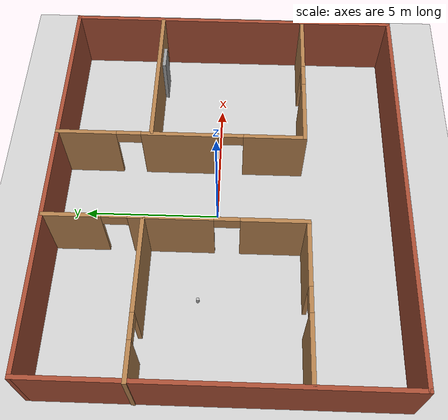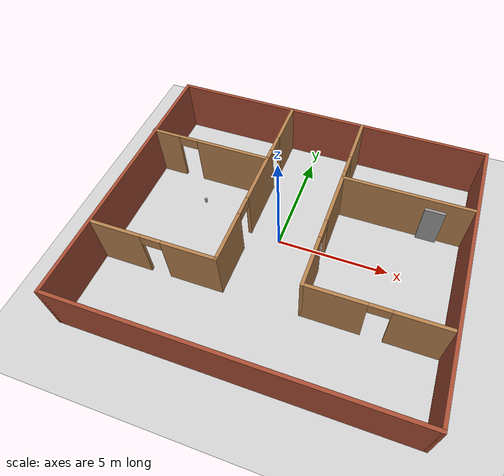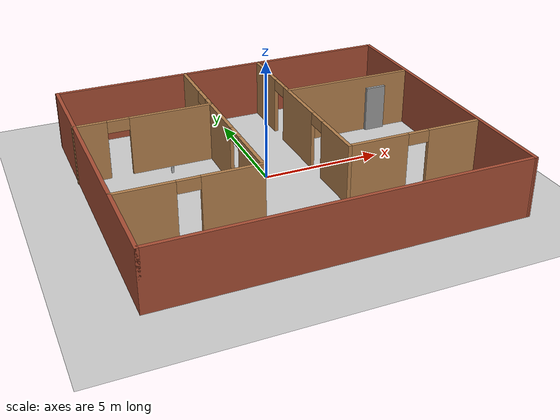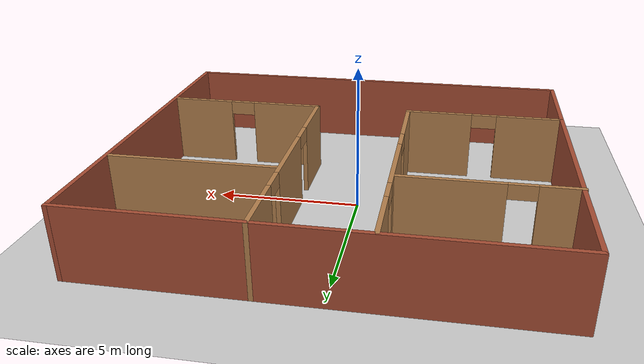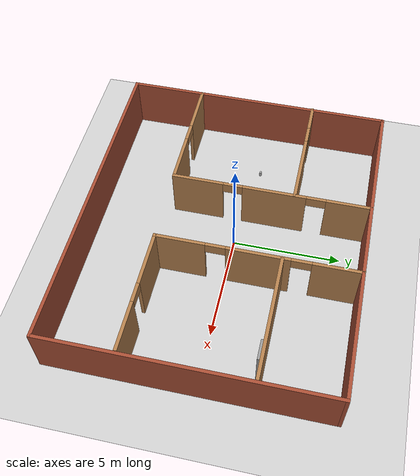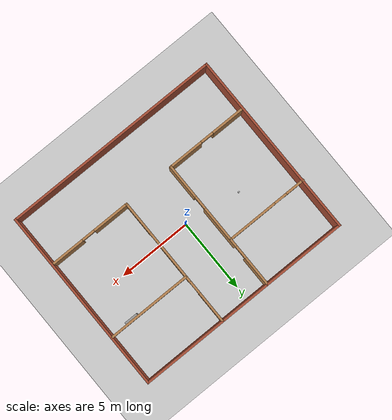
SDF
<sdf version="1.7">
 <world name="default">
  <model name="ground_plane">
   <static>1</static>
   <link name="link">
    <collision name="collision">
     <geometry><plane><normal>0 0 1</normal><size>100 100</size></plane></geometry>
     <surface><friction><ode><mu>100</mu><mu2>50</mu2></ode></friction></surface>
    </collision>
    <visual name="visual">
     <cast_shadows>0</cast_shadows>
     <geometry><plane><normal>0 0 1</normal><size>100 100</size></plane></geometry>
     <material>
      <script><uri>file://media/materials/scripts/gazebo.material</uri><name>Gazebo/Grey</name></script>
     </material>
    </visual>
   </link>
  </model>
  <gravity>0 0 -9.8</gravity>
  <magnetic_field>6e-06 2.3e-05 -4.2e-05</magnetic_field>
  <atmosphere type="adiabatic"/>
  <physics type="ode">
   <max_step_size>0.001</max_step_size>
   <real_time_factor>1</real_time_factor>
   <real_time_update_rate>1000</real_time_update_rate>
  </physics>
  <scene><ambient>0.4 0.4 0.4 1</ambient><background>0.7 0.7 0.7 1</background><shadows>1</shadows></scene>
  <audio><device>default</device></audio>
  <spherical_coordinates>
   <surface_model>EARTH_WGS84</surface_model>
   <latitude_deg>0</latitude_deg>
   <longitude_deg>0</longitude_deg>
   <elevation>0</elevation>
   <heading_deg>0</heading_deg>
  </spherical_coordinates>
  <model name="my_floor">
   <pose>0.381389 -0.326345 0 0 -0 0</pose>
   <link name="Door_5">
    <collision name="Door_5_Collision">
     <geometry><box><size>0.9 0.17 2</size></box></geometry>
     <pose>0 0 1 0 -0 0</pose>
    </collision>
    <visual name="Door_5_Visual">
     <pose>0 0 1 0 -0 0</pose>
     <geometry><box><size>0.9 0.17 2</size></box></geometry>
     <material>
      <script><uri>file://media/materials/scripts/gazebo.material</uri><name>Gazebo/Grey</name></script>
     </material>
    </visual>
    <pose>5.83586 2.72094 0 0 -0 0</pose>
   </link>
   <link name="Wall_10">
    <pose>-4.6097 -2.84648 0 0 -0 0</pose>
    <visual name="Wall_10_Visual_0">
     <pose>-1.67064 0 1.25 0 -0 0</pose>
     <geometry><box><size>2.40871 0.15 2.5</size></box></geometry>
     <material>
      <script><uri>file://media/materials/scripts/gazebo.material</uri><name>Gazebo/Wood</name></script>
      <ambient>1 1 1 1</ambient>
     </material>
     <meta><layer>0</layer></meta>
    </visual>
    <collision name="Wall_10_Collision_0">
     <geometry><box><size>2.40871 0.15 2.5</size></box></geometry>
     <pose>-1.67064 0 1.25 0 -0 0</pose>
    </collision>
    <visual name="Wall_10_Visual_1">
     <pose>1.65436 0 1.25 0 -0 0</pose>
     <geometry><box><size>2.44129 0.15 2.5</size></box></geometry>
     <material>
      <script><uri>file://media/materials/scripts/gazebo.material</uri><name>Gazebo/Wood</name></script>
      <ambient>1 1 1 1</ambient>
     </material>
     <meta><layer>0</layer></meta>
    </visual>
    <collision name="Wall_10_Collision_1">
     <geometry><box><size>2.44129 0.15 2.5</size></box></geometry>
     <pose>1.65436 0 1.25 0 -0 0</pose>
    </collision>
    <visual name="Wall_10_Visual_2">
     <pose>-0.016289 0 2.25 0 -0 0</pose>
     <geometry><box><size>0.9 0.15 0.5</size></box></geometry>
     <material>
      <script><uri>file://media/materials/scripts/gazebo.material</uri><name>Gazebo/Wood</name></script>
      <ambient>1 1 1 1</ambient>
     </material>
     <meta><layer>0</layer></meta>
    </visual>
    <collision name="Wall_10_Collision_2">
     <geometry><box><size>0.9 0.15 0.5</size></box></geometry>
     <pose>-0.016289 0 2.25 0 -0 0</pose>
    </collision>
   </link>
   <link name="Wall_11">
    <pose>-1.8097 1.70352 0 0 -0 1.5708</pose>
    <visual name="Wall_11_Visual_0">
     <pose>-3.42064 0 1.25 0 -0 0</pose>
     <geometry><box><size>2.40871 0.15 2.5</size></box></geometry>
     <material>
      <script><uri>file://media/materials/scripts/gazebo.material</uri><name>Gazebo/Wood</name></script>
      <ambient>1 1 1 1</ambient>
     </material>
     <meta><layer>0</layer></meta>
    </visual>
    <collision name="Wall_11_Collision_0">
     <geometry><box><size>2.40871 0.15 2.5</size></box></geometry>
     <pose>-3.42064 0 1.25 0 -0 0</pose>
    </collision>
    <visual name="Wall_11_Visual_1">
     <pose>0.160895 0 1.25 0 -0 0</pose>
     <geometry><box><size>2.95437 0.15 2.5</size></box></geometry>
     <material>
      <script><uri>file://media/materials/scripts/gazebo.material</uri><name>Gazebo/Wood</name></script>
      <ambient>1 1 1 1</ambient>
     </material>
     <meta><layer>0</layer></meta>
    </visual>
    <collision name="Wall_11_Collision_1">
     <geometry><box><size>2.95437 0.15 2.5</size></box></geometry>
     <pose>0.160895 0 1.25 0 -0 0</pose>
    </collision>
    <visual name="Wall_11_Visual_2">
     <pose>3.58154 0 1.25 0 -0 0</pose>
     <geometry><box><size>2.08692 0.15 2.5</size></box></geometry>
     <material>
      <script><uri>file://media/materials/scripts/gazebo.material</uri><name>Gazebo/Wood</name></script>
      <ambient>1 1 1 1</ambient>
     </material>
     <meta><layer>0</layer></meta>
    </visual>
    <collision name="Wall_11_Collision_2">
     <geometry><box><size>2.08692 0.15 2.5</size></box></geometry>
     <pose>3.58154 0 1.25 0 -0 0</pose>
    </collision>
    <visual name="Wall_11_Visual_3">
     <pose>-1.76629 0 2.25 0 -0 0</pose>
     <geometry><box><size>0.9 0.15 0.5</size></box></geometry>
     <material>
      <script><uri>file://media/materials/scripts/gazebo.material</uri><name>Gazebo/Wood</name></script>
      <ambient>1 1 1 1</ambient>
     </material>
     <meta><layer>0</layer></meta>
    </visual>
    <collision name="Wall_11_Collision_3">
     <geometry><box><size>0.9 0.15 0.5</size></box></geometry>
     <pose>-1.76629 0 2.25 0 -0 0</pose>
    </collision>
    <visual name="Wall_11_Visual_4">
     <pose>2.08808 0 2.25 0 -0 0</pose>
     <geometry><box><size>0.9 0.15 0.5</size></box></geometry>
     <material>
      <script><uri>file://media/materials/scripts/gazebo.material</uri><name>Gazebo/Wood</name></script>
      <ambient>1 1 1 1</ambient>
     </material>
     <meta><layer>0</layer></meta>
    </visual>
    <collision name="Wall_11_Collision_4">
     <geometry><box><size>0.9 0.15 0.5</size></box></geometry>
     <pose>2.08808 0 2.25 0 -0 0</pose>
    </collision>
   </link>
   <link name="Wall_13">
    <pose>1.67559 1.75 0 0 -0 -1.5708</pose>
    <visual name="Wall_13_Visual_0">
     <pose>-3.49712 0 1.25 0 -0 0</pose>
     <geometry><box><size>2.25576 0.15 2.5</size></box></geometry>
     <material>
      <script><uri>file://media/materials/scripts/gazebo.material</uri><name>Gazebo/Wood</name></script>
      <ambient>1 1 1 1</ambient>
     </material>
     <meta><layer>0</layer></meta>
    </visual>
    <collision name="Wall_13_Collision_0">
     <geometry><box><size>2.25576 0.15 2.5</size></box></geometry>
     <pose>-3.49712 0 1.25 0 -0 0</pose>
    </collision>
    <visual name="Wall_13_Visual_1">
     <pose>-0.037941 0 1.25 0 -0 0</pose>
     <geometry><box><size>2.8626 0.15 2.5</size></box></geometry>
     <material>
      <script><uri>file://media/materials/scripts/gazebo.material</uri><name>Gazebo/Wood</name></script>
      <ambient>1 1 1 1</ambient>
     </material>
     <meta><layer>0</layer></meta>
    </visual>
    <collision name="Wall_13_Collision_1">
     <geometry><box><size>2.8626 0.15 2.5</size></box></geometry>
     <pose>-0.037941 0 1.25 0 -0 0</pose>
    </collision>
    <visual name="Wall_13_Visual_2">
     <pose>3.45918 0 1.25 0 -0 0</pose>
     <geometry><box><size>2.33164 0.15 2.5</size></box></geometry>
     <material>
      <script><uri>file://media/materials/scripts/gazebo.material</uri><name>Gazebo/Wood</name></script>
      <ambient>1 1 1 1</ambient>
     </material>
     <meta><layer>0</layer></meta>
    </visual>
    <collision name="Wall_13_Collision_2">
     <geometry><box><size>2.33164 0.15 2.5</size></box></geometry>
     <pose>3.45918 0 1.25 0 -0 0</pose>
    </collision>
    <visual name="Wall_13_Visual_3">
     <pose>-1.91924 0 2.25 0 -0 0</pose>
     <geometry><box><size>0.9 0.15 0.5</size></box></geometry>
     <material>
      <script><uri>file://media/materials/scripts/gazebo.material</uri><name>Gazebo/Wood</name></script>
      <ambient>1 1 1 1</ambient>
     </material>
     <meta><layer>0</layer></meta>
    </visual>
    <collision name="Wall_13_Collision_3">
     <geometry><box><size>0.9 0.15 0.5</size></box></geometry>
     <pose>-1.91924 0 2.25 0 -0 0</pose>
    </collision>
    <visual name="Wall_13_Visual_4">
     <pose>1.84336 0 2.25 0 -0 0</pose>
     <geometry><box><size>0.9 0.15 0.5</size></box></geometry>
     <material>
      <script><uri>file://media/materials/scripts/gazebo.material</uri><name>Gazebo/Wood</name></script>
      <ambient>1 1 1 1</ambient>
     </material>
     <meta><layer>0</layer></meta>
    </visual>
    <collision name="Wall_13_Collision_4">
     <geometry><box><size>0.9 0.15 0.5</size></box></geometry>
     <pose>1.84336 0 2.25 0 -0 0</pose>
    </collision>
   </link>
   <link name="Wall_14">
    <pose>4.47559 -2.8 0 0 -0 0</pose>
    <visual name="Wall_14_Visual_0">
     <pose>-1.57887 0 1.25 0 -0 0</pose>
     <geometry><box><size>2.59225 0.15 2.5</size></box></geometry>
     <material>
      <script><uri>file://media/materials/scripts/gazebo.material</uri><name>Gazebo/Wood</name></script>
      <ambient>1 1 1 1</ambient>
     </material>
     <meta><layer>0</layer></meta>
    </visual>
    <collision name="Wall_14_Collision_0">
     <geometry><box><size>2.59225 0.15 2.5</size></box></geometry>
     <pose>-1.57887 0 1.25 0 -0 0</pose>
    </collision>
    <visual name="Wall_14_Visual_1">
     <pose>1.74613 0 1.25 0 -0 0</pose>
     <geometry><box><size>2.25775 0.15 2.5</size></box></geometry>
     <material>
      <script><uri>file://media/materials/scripts/gazebo.material</uri><name>Gazebo/Wood</name></script>
      <ambient>1 1 1 1</ambient>
     </material>
     <meta><layer>0</layer></meta>
    </visual>
    <collision name="Wall_14_Collision_1">
     <geometry><box><size>2.25775 0.15 2.5</size></box></geometry>
     <pose>1.74613 0 1.25 0 -0 0</pose>
    </collision>
    <visual name="Wall_14_Visual_2">
     <pose>0.167253 0 2.25 0 -0 0</pose>
     <geometry><box><size>0.9 0.15 0.5</size></box></geometry>
     <material>
      <script><uri>file://media/materials/scripts/gazebo.material</uri><name>Gazebo/Wood</name></script>
      <ambient>1 1 1 1</ambient>
     </material>
     <meta><layer>0</layer></meta>
    </visual>
    <collision name="Wall_14_Collision_2">
     <geometry><box><size>0.9 0.15 0.5</size></box></geometry>
     <pose>0.167253 0 2.25 0 -0 0</pose>
    </collision>
   </link>
   <link name="Wall_16">
    <pose>-4.6403 2.81271 0 0 -0 0</pose>
    <visual name="Wall_16_Visual_0">
     <pose>-2.19068 0 1.25 0 -0 0</pose>
     <geometry><box><size>1.36864 0.15 2.5</size></box></geometry>
     <material>
      <script><uri>file://media/materials/scripts/gazebo.material</uri><name>Gazebo/Wood</name></script>
      <ambient>1 1 1 1</ambient>
     </material>
     <meta><layer>0</layer></meta>
    </visual>
    <collision name="Wall_16_Collision_0">
     <geometry><box><size>1.36864 0.15 2.5</size></box></geometry>
     <pose>-2.19068 0 1.25 0 -0 0</pose>
    </collision>
    <visual name="Wall_16_Visual_1">
     <pose>1.13432 0 1.25 0 -0 0</pose>
     <geometry><box><size>3.48136 0.15 2.5</size></box></geometry>
     <material>
      <script><uri>file://media/materials/scripts/gazebo.material</uri><name>Gazebo/Wood</name></script>
      <ambient>1 1 1 1</ambient>
     </material>
     <meta><layer>0</layer></meta>
    </visual>
    <collision name="Wall_16_Collision_1">
     <geometry><box><size>3.48136 0.15 2.5</size></box></geometry>
     <pose>1.13432 0 1.25 0 -0 0</pose>
    </collision>
    <visual name="Wall_16_Visual_2">
     <pose>-1.05636 0 2.25 0 -0 0</pose>
     <geometry><box><size>0.9 0.15 0.5</size></box></geometry>
     <material>
      <script><uri>file://media/materials/scripts/gazebo.material</uri><name>Gazebo/Wood</name></script>
      <ambient>1 1 1 1</ambient>
     </material>
     <meta><layer>0</layer></meta>
    </visual>
    <collision name="Wall_16_Collision_2">
     <geometry><box><size>0.9 0.15 0.5</size></box></geometry>
     <pose>-1.05636 0 2.25 0 -0 0</pose>
    </collision>
   </link>
   <link name="Wall_18">
    <collision name="Wall_18_Collision">
     <geometry><box><size>5.75 0.15 2.5</size></box></geometry>
     <pose>0 0 1.25 0 -0 0</pose>
    </collision>
    <visual name="Wall_18_Visual">
     <pose>0 0 1.25 0 -0 0</pose>
     <geometry><box><size>5.75 0.15 2.5</size></box></geometry>
     <material>
      <script><uri>file://media/materials/scripts/gazebo.material</uri><name>Gazebo/Wood</name></script>
      <ambient>1 1 1 1</ambient>
     </material>
     <meta><layer>0</layer></meta>
    </visual>
    <pose>4.53677 2.8433 0 0 -0 0</pose>
   </link>
   <link name="Wall_5">
    <collision name="Wall_5_Collision">
     <geometry><box><size>12.75 0.15 2.5</size></box></geometry>
     <pose>0 0 1.25 0 -0 0</pose>
    </collision>
    <visual name="Wall_5_Visual">
     <pose>0 0 1.25 0 -0 0</pose>
     <geometry><box><size>12.75 0.15 2.5</size></box></geometry>
     <material>
      <script><uri>file://media/materials/scripts/gazebo.material</uri><name>Gazebo/Bricks</name></script>
      <ambient>1 1 1 1</ambient>
     </material>
     <meta><layer>0</layer></meta>
    </visual>
    <pose>-7.4097 0 0 0 -0 -1.5708</pose>
   </link>
   <link name="Wall_6">
    <collision name="Wall_6_Collision">
     <geometry><box><size>15 0.15 2.5</size></box></geometry>
     <pose>0 0 1.25 0 -0 0</pose>
    </collision>
    <visual name="Wall_6_Visual">
     <pose>0 0 1.25 0 -0 0</pose>
     <geometry><box><size>15 0.15 2.5</size></box></geometry>
     <material>
      <script><uri>file://media/materials/scripts/gazebo.material</uri><name>Gazebo/Bricks</name></script>
      <ambient>1 1 1 1</ambient>
     </material>
     <meta><layer>0</layer></meta>
    </visual>
    <pose>0.015295 -6.3 0 0 -0 0</pose>
   </link>
   <link name="Wall_7">
    <collision name="Wall_7_Collision">
     <geometry><box><size>12.75 0.15 2.5</size></box></geometry>
     <pose>0 0 1.25 0 -0 0</pose>
    </collision>
    <visual name="Wall_7_Visual">
     <pose>0 0 1.25 0 -0 0</pose>
     <geometry><box><size>12.75 0.15 2.5</size></box></geometry>
     <material>
      <script><uri>file://media/materials/scripts/gazebo.material</uri><name>Gazebo/Bricks</name></script>
      <ambient>1 1 1 1</ambient>
     </material>
     <meta><layer>0</layer></meta>
    </visual>
    <pose>7.44029 0 0 0 -0 1.5708</pose>
   </link>
   <link name="Wall_8">
    <collision name="Wall_8_Collision">
     <geometry><box><size>15 0.15 2.5</size></box></geometry>
     <pose>0 0 1.25 0 -0 0</pose>
    </collision>
    <visual name="Wall_8_Visual">
     <pose>0 0 1.25 0 -0 0</pose>
     <geometry><box><size>15 0.15 2.5</size></box></geometry>
     <material>
      <script><uri>file://media/materials/scripts/gazebo.material</uri><name>Gazebo/Bricks</name></script>
      <ambient>1 1 1 1</ambient>
     </material>
     <meta><layer>0</layer></meta>
    </visual>
    <pose>0.015295 6.3 0 0 -0 3.14159</pose>
   </link>
   <static>1</static>
  </model>
  <model name="beer">
   <link name="link">
    <pose>0 0 0.115 0 -0 0</pose>
    <inertial>
     <mass>0.39</mass>
     <inertia><ixx>0.00058</ixx><ixy>0</ixy><ixz>0</ixz><iyy>0.00058</iyy><iyz>0</iyz><izz>0.00019</izz></inertia>
    </inertial>
    <collision name="collision">
     <geometry><cylinder><radius>0.055</radius><length>0.23</length></cylinder></geometry>
    </collision>
    <visual name="visual">
     <geometry><cylinder><radius>0.055</radius><length>0.23</length></cylinder></geometry>
     <material>
      <script>
       <uri>model://beer/materials/scripts</uri>
       <uri>model://beer/materials/textures</uri>
       <name>Beer/Diffuse</name>
      </script>
     </material>
    </visual>
   </link>
   <pose>-3.7488 0.530643 0.775005 2.4e-05 9.3e-05 0.000173</pose>
  </model>
 </world>
</sdf>
